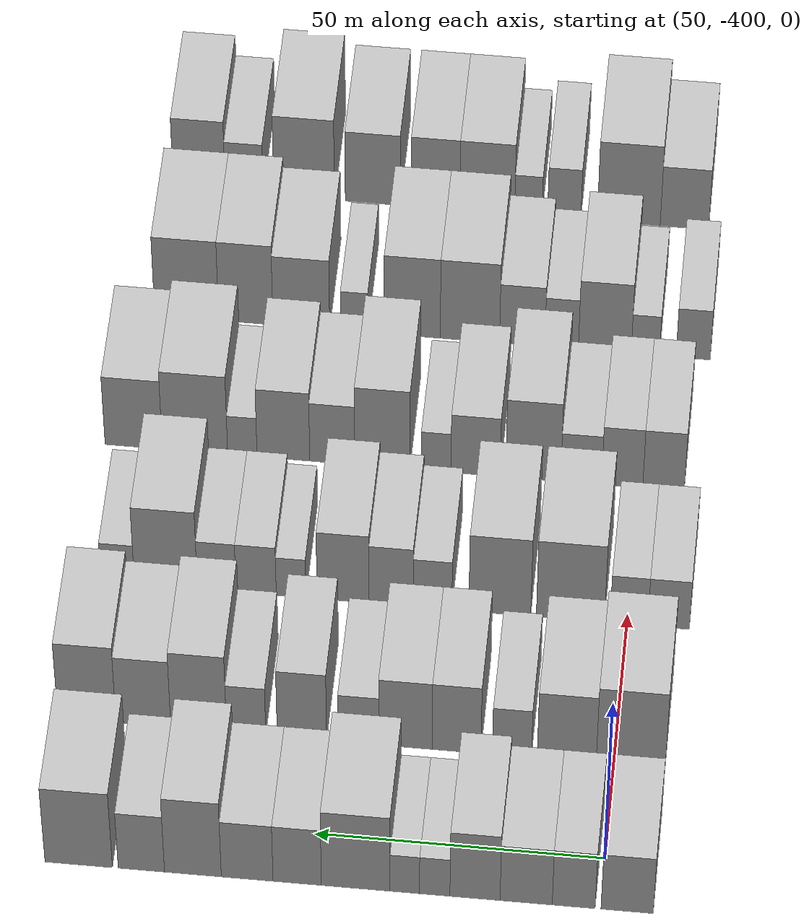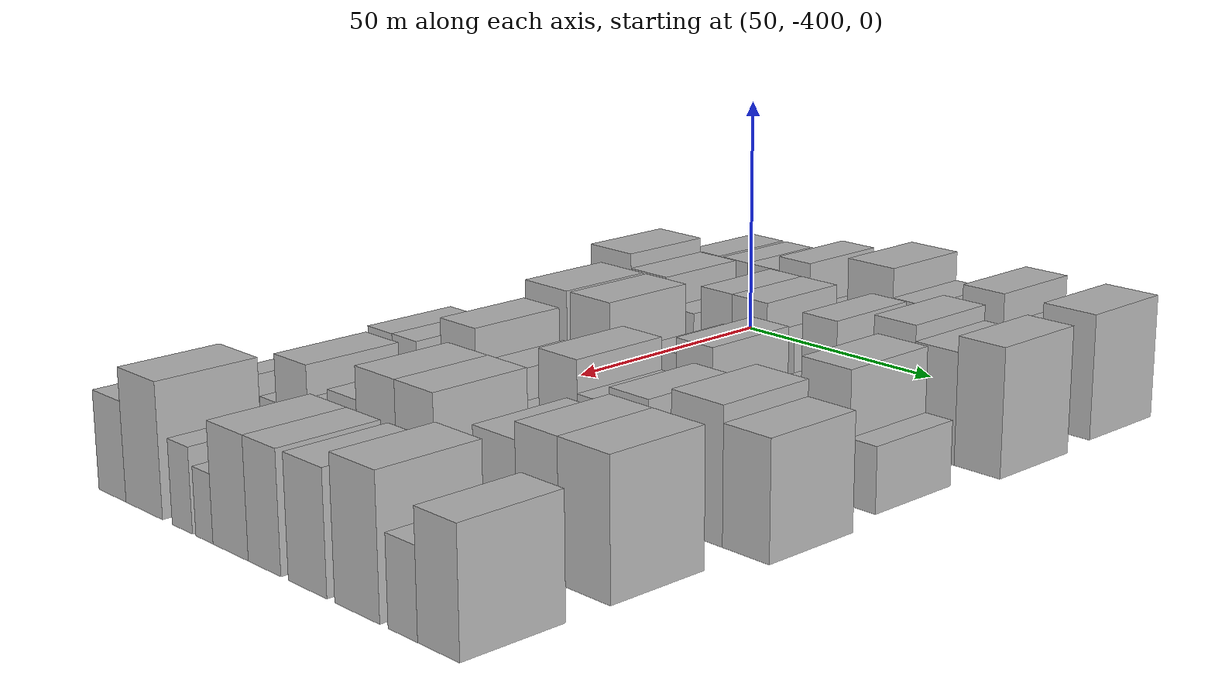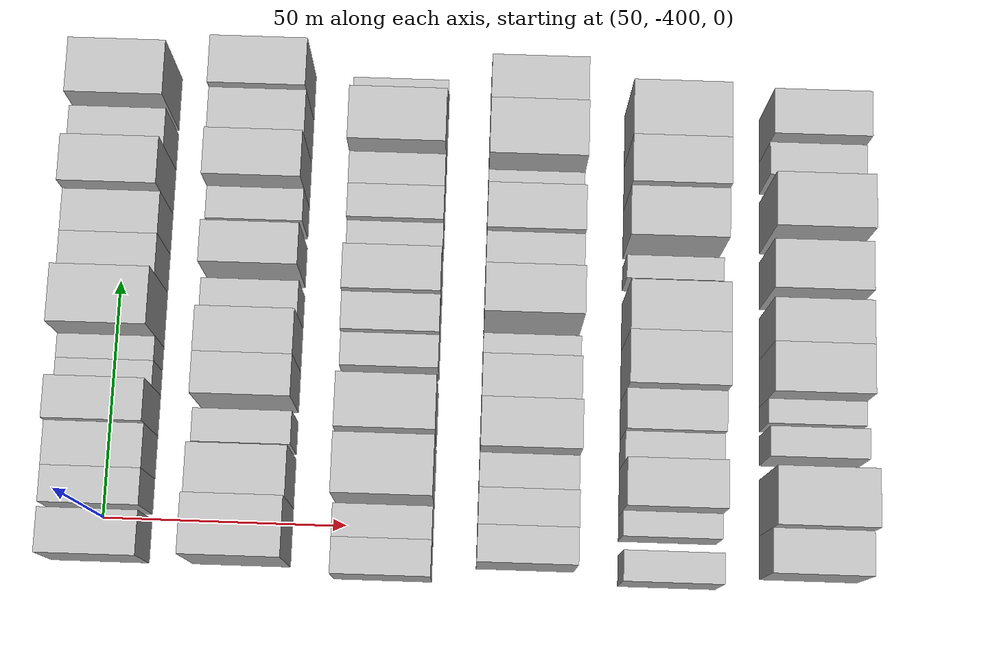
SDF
<sdf version="1.6">
 <world name="default">
  <model name="building_14">
   <static>1</static>
   <pose>50.0000 -404.5082 0 0.000000 0.000000 0.000000</pose>
   <link name="link">
    <pose>0 0 9.00 0 0 0</pose>
    <collision name="collision"><geometry><box><size>20.0000 8.9333 18.0000</size></box></geometry></collision>
    <visual name="visual">
     <cast_shadows>0</cast_shadows>
     <geometry><box><size>20.0000 8.9333 18.0000</size></box></geometry>
     <material>
      <script>
       <uri>model://HANNAS_wall/materials/scripts</uri>
       <uri>model://HANNAS_wall/materials/textures</uri>
       <name>vrc/HANNAS_wall</name>
      </script>
     </material>
    </visual>
   </link>
  </model>
  <model name="building_15">
   <static>1</static>
   <pose>50.0000 -395.3753 0 0.000000 0.000000 0.000000</pose>
   <link name="link">
    <pose>0 0 9.00 0 0 0</pose>
    <collision name="collision"><geometry><box><size>20.0000 7.3325 18.0000</size></box></geometry></collision>
    <visual name="visual">
     <cast_shadows>0</cast_shadows>
     <geometry><box><size>20.0000 7.3325 18.0000</size></box></geometry>
     <material>
      <script>
       <uri>model://HANNAS_wall/materials/scripts</uri>
       <uri>model://HANNAS_wall/materials/textures</uri>
       <name>vrc/HANNAS_wall</name>
      </script>
     </material>
    </visual>
   </link>
  </model>
  <model name="building_16">
   <static>1</static>
   <pose>50.0000 -387.2432 0 0.000000 0.000000 0.000000</pose>
   <link name="link">
    <pose>0 0 9.00 0 0 0</pose>
    <collision name="collision"><geometry><box><size>20.0000 8.9317 18.0000</size></box></geometry></collision>
    <visual name="visual">
     <cast_shadows>0</cast_shadows>
     <geometry><box><size>20.0000 8.9317 18.0000</size></box></geometry>
     <material>
      <script>
       <uri>model://HANNAS_wall/materials/scripts</uri>
       <uri>model://HANNAS_wall/materials/textures</uri>
       <name>vrc/HANNAS_wall</name>
      </script>
     </material>
    </visual>
   </link>
  </model>
  <model name="building_17">
   <static>1</static>
   <pose>50.0000 -378.4819 0 0.000000 0.000000 0.000000</pose>
   <link name="link">
    <pose>0 0 10.50 0 0 0</pose>
    <collision name="collision"><geometry><box><size>20.0000 8.5909 21.0000</size></box></geometry></collision>
    <visual name="visual">
     <cast_shadows>0</cast_shadows>
     <geometry><box><size>20.0000 8.5909 21.0000</size></box></geometry>
     <material>
      <script>
       <uri>model://HANNAS_wall/materials/scripts</uri>
       <uri>model://HANNAS_wall/materials/textures</uri>
       <name>vrc/HANNAS_wall</name>
      </script>
     </material>
    </visual>
   </link>
  </model>
  <model name="building_18">
   <static>1</static>
   <pose>50.0000 -371.5824 0 0.000000 0.000000 0.000000</pose>
   <link name="link">
    <pose>0 0 6.00 0 0 0</pose>
    <collision name="collision"><geometry><box><size>20.0000 5.2082 12.0000</size></box></geometry></collision>
    <visual name="visual">
     <cast_shadows>0</cast_shadows>
     <geometry><box><size>20.0000 5.2082 12.0000</size></box></geometry>
     <material>
      <script>
       <uri>model://HANNAS_wall/materials/scripts</uri>
       <uri>model://HANNAS_wall/materials/textures</uri>
       <name>vrc/HANNAS_wall</name>
      </script>
     </material>
    </visual>
   </link>
  </model>
  <model name="building_19">
   <static>1</static>
   <pose>50.0000 -366.4472 0 0.000000 0.000000 0.000000</pose>
   <link name="link">
    <pose>0 0 6.00 0 0 0</pose>
    <collision name="collision"><geometry><box><size>20.0000 5.0620 12.0000</size></box></geometry></collision>
    <visual name="visual">
     <cast_shadows>0</cast_shadows>
     <geometry><box><size>20.0000 5.0620 12.0000</size></box></geometry>
     <material>
      <script>
       <uri>model://HANNAS_wall/materials/scripts</uri>
       <uri>model://HANNAS_wall/materials/textures</uri>
       <name>vrc/HANNAS_wall</name>
      </script>
     </material>
    </visual>
   </link>
  </model>
  <model name="building_20">
   <static>1</static>
   <pose>50.0000 -358.0317 0 0.000000 0.000000 0.000000</pose>
   <link name="link">
    <pose>0 0 12.00 0 0 0</pose>
    <collision name="collision"><geometry><box><size>20.0000 11.7691 24.0000</size></box></geometry></collision>
    <visual name="visual">
     <cast_shadows>0</cast_shadows>
     <geometry><box><size>20.0000 11.7691 24.0000</size></box></geometry>
     <material>
      <script>
       <uri>model://HANNAS_wall/materials/scripts</uri>
       <uri>model://HANNAS_wall/materials/textures</uri>
       <name>vrc/HANNAS_wall</name>
      </script>
     </material>
    </visual>
   </link>
  </model>
  <model name="building_21">
   <static>1</static>
   <pose>50.0000 -347.9946 0 0.000000 0.000000 0.000000</pose>
   <link name="link">
    <pose>0 0 9.00 0 0 0</pose>
    <collision name="collision"><geometry><box><size>20.0000 8.3049 18.0000</size></box></geometry></collision>
    <visual name="visual">
     <cast_shadows>0</cast_shadows>
     <geometry><box><size>20.0000 8.3049 18.0000</size></box></geometry>
     <material>
      <script>
       <uri>model://HANNAS_wall/materials/scripts</uri>
       <uri>model://HANNAS_wall/materials/textures</uri>
       <name>vrc/HANNAS_wall</name>
      </script>
     </material>
    </visual>
   </link>
  </model>
  <model name="building_22">
   <static>1</static>
   <pose>50.0000 -339.3955 0 0.000000 0.000000 0.000000</pose>
   <link name="link">
    <pose>0 0 9.00 0 0 0</pose>
    <collision name="collision"><geometry><box><size>20.0000 8.8934 18.0000</size></box></geometry></collision>
    <visual name="visual">
     <cast_shadows>0</cast_shadows>
     <geometry><box><size>20.0000 8.8934 18.0000</size></box></geometry>
     <material>
      <script>
       <uri>model://HANNAS_wall/materials/scripts</uri>
       <uri>model://HANNAS_wall/materials/textures</uri>
       <name>vrc/HANNAS_wall</name>
      </script>
     </material>
    </visual>
   </link>
  </model>
  <model name="building_23">
   <static>1</static>
   <pose>50.0000 -330.0623 0 0.000000 0.000000 0.000000</pose>
   <link name="link">
    <pose>0 0 12.00 0 0 0</pose>
    <collision name="collision"><geometry><box><size>20.0000 9.7729 24.0000</size></box></geometry></collision>
    <visual name="visual">
     <cast_shadows>0</cast_shadows>
     <geometry><box><size>20.0000 9.7729 24.0000</size></box></geometry>
     <material>
      <script>
       <uri>model://HANNAS_wall/materials/scripts</uri>
       <uri>model://HANNAS_wall/materials/textures</uri>
       <name>vrc/HANNAS_wall</name>
      </script>
     </material>
    </visual>
   </link>
  </model>
  <model name="building_24">
   <static>1</static>
   <pose>50.0000 -321.1893 0 0.000000 0.000000 0.000000</pose>
   <link name="link">
    <pose>0 0 9.00 0 0 0</pose>
    <collision name="collision"><geometry><box><size>20.0000 7.9732 18.0000</size></box></geometry></collision>
    <visual name="visual">
     <cast_shadows>0</cast_shadows>
     <geometry><box><size>20.0000 7.9732 18.0000</size></box></geometry>
     <material>
      <script>
       <uri>model://HANNAS_wall/materials/scripts</uri>
       <uri>model://HANNAS_wall/materials/textures</uri>
       <name>vrc/HANNAS_wall</name>
      </script>
     </material>
    </visual>
   </link>
  </model>
  <model name="building_25">
   <static>1</static>
   <pose>50.0000 -310.3967 0 0.000000 0.000000 0.000000</pose>
   <link name="link">
    <pose>0 0 12.00 0 0 0</pose>
    <collision name="collision"><geometry><box><size>20.0000 11.6121 24.0000</size></box></geometry></collision>
    <visual name="visual">
     <cast_shadows>0</cast_shadows>
     <geometry><box><size>20.0000 11.6121 24.0000</size></box></geometry>
     <material>
      <script>
       <uri>model://HANNAS_wall/materials/scripts</uri>
       <uri>model://HANNAS_wall/materials/textures</uri>
       <name>vrc/HANNAS_wall</name>
      </script>
     </material>
    </visual>
   </link>
  </model>
  <model name="building_134">
   <static>1</static>
   <pose>79.0000 -402.8582 0 0.000000 0.000000 0.000000</pose>
   <link name="link">
    <pose>0 0 12.00 0 0 0</pose>
    <collision name="collision"><geometry><box><size>20.0000 11.9612 24.0000</size></box></geometry></collision>
    <visual name="visual">
     <cast_shadows>0</cast_shadows>
     <geometry><box><size>20.0000 11.9612 24.0000</size></box></geometry>
     <material>
      <script>
       <uri>model://HANNAS_wall/materials/scripts</uri>
       <uri>model://HANNAS_wall/materials/textures</uri>
       <name>vrc/HANNAS_wall</name>
      </script>
     </material>
    </visual>
   </link>
  </model>
  <model name="building_135">
   <static>1</static>
   <pose>79.0000 -391.7599 0 0.000000 0.000000 0.000000</pose>
   <link name="link">
    <pose>0 0 10.50 0 0 0</pose>
    <collision name="collision"><geometry><box><size>20.0000 10.2354 21.0000</size></box></geometry></collision>
    <visual name="visual">
     <cast_shadows>0</cast_shadows>
     <geometry><box><size>20.0000 10.2354 21.0000</size></box></geometry>
     <material>
      <script>
       <uri>model://HANNAS_wall/materials/scripts</uri>
       <uri>model://HANNAS_wall/materials/textures</uri>
       <name>vrc/HANNAS_wall</name>
      </script>
     </material>
    </visual>
   </link>
  </model>
  <model name="building_136">
   <static>1</static>
   <pose>79.0000 -382.2510 0 0.000000 0.000000 0.000000</pose>
   <link name="link">
    <pose>0 0 7.50 0 0 0</pose>
    <collision name="collision"><geometry><box><size>20.0000 6.7823 15.0000</size></box></geometry></collision>
    <visual name="visual">
     <cast_shadows>0</cast_shadows>
     <geometry><box><size>20.0000 6.7823 15.0000</size></box></geometry>
     <material>
      <script>
       <uri>model://HANNAS_wall/materials/scripts</uri>
       <uri>model://HANNAS_wall/materials/textures</uri>
       <name>vrc/HANNAS_wall</name>
      </script>
     </material>
    </visual>
   </link>
  </model>
  <model name="building_137">
   <static>1</static>
   <pose>79.0000 -372.6180 0 0.000000 0.000000 0.000000</pose>
   <link name="link">
    <pose>0 0 10.50 0 0 0</pose>
    <collision name="collision"><geometry><box><size>20.0000 8.4836 21.0000</size></box></geometry></collision>
    <visual name="visual">
     <cast_shadows>0</cast_shadows>
     <geometry><box><size>20.0000 8.4836 21.0000</size></box></geometry>
     <material>
      <script>
       <uri>model://HANNAS_wall/materials/scripts</uri>
       <uri>model://HANNAS_wall/materials/textures</uri>
       <name>vrc/HANNAS_wall</name>
      </script>
     </material>
    </visual>
   </link>
  </model>
  <model name="building_138">
   <static>1</static>
   <pose>79.0000 -363.7415 0 0.000000 0.000000 0.000000</pose>
   <link name="link">
    <pose>0 0 10.50 0 0 0</pose>
    <collision name="collision"><geometry><box><size>20.0000 9.2694 21.0000</size></box></geometry></collision>
    <visual name="visual">
     <cast_shadows>0</cast_shadows>
     <geometry><box><size>20.0000 9.2694 21.0000</size></box></geometry>
     <material>
      <script>
       <uri>model://HANNAS_wall/materials/scripts</uri>
       <uri>model://HANNAS_wall/materials/textures</uri>
       <name>vrc/HANNAS_wall</name>
      </script>
     </material>
    </visual>
   </link>
  </model>
  <model name="building_139">
   <static>1</static>
   <pose>79.0000 -355.5695 0 0.000000 0.000000 0.000000</pose>
   <link name="link">
    <pose>0 0 7.50 0 0 0</pose>
    <collision name="collision"><geometry><box><size>20.0000 7.0746 15.0000</size></box></geometry></collision>
    <visual name="visual">
     <cast_shadows>0</cast_shadows>
     <geometry><box><size>20.0000 7.0746 15.0000</size></box></geometry>
     <material>
      <script>
       <uri>model://HANNAS_wall/materials/scripts</uri>
       <uri>model://HANNAS_wall/materials/textures</uri>
       <name>vrc/HANNAS_wall</name>
      </script>
     </material>
    </visual>
   </link>
  </model>
  <model name="building_140">
   <static>1</static>
   <pose>79.0000 -345.7314 0 0.000000 0.000000 0.000000</pose>
   <link name="link">
    <pose>0 0 10.50 0 0 0</pose>
    <collision name="collision"><geometry><box><size>20.0000 8.6015 21.0000</size></box></geometry></collision>
    <visual name="visual">
     <cast_shadows>0</cast_shadows>
     <geometry><box><size>20.0000 8.6015 21.0000</size></box></geometry>
     <material>
      <script>
       <uri>model://HANNAS_wall/materials/scripts</uri>
       <uri>model://HANNAS_wall/materials/textures</uri>
       <name>vrc/HANNAS_wall</name>
      </script>
     </material>
    </visual>
   </link>
  </model>
  <model name="building_141">
   <static>1</static>
   <pose>79.0000 -336.0127 0 0.000000 0.000000 0.000000</pose>
   <link name="link">
    <pose>0 0 7.50 0 0 0</pose>
    <collision name="collision"><geometry><box><size>20.0000 6.8360 15.0000</size></box></geometry></collision>
    <visual name="visual">
     <cast_shadows>0</cast_shadows>
     <geometry><box><size>20.0000 6.8360 15.0000</size></box></geometry>
     <material>
      <script>
       <uri>model://HANNAS_wall/materials/scripts</uri>
       <uri>model://HANNAS_wall/materials/textures</uri>
       <name>vrc/HANNAS_wall</name>
      </script>
     </material>
    </visual>
   </link>
  </model>
  <model name="building_142">
   <static>1</static>
   <pose>79.0000 -327.7256 0 0.000000 0.000000 0.000000</pose>
   <link name="link">
    <pose>0 0 12.00 0 0 0</pose>
    <collision name="collision"><geometry><box><size>20.0000 9.7382 24.0000</size></box></geometry></collision>
    <visual name="visual">
     <cast_shadows>0</cast_shadows>
     <geometry><box><size>20.0000 9.7382 24.0000</size></box></geometry>
     <material>
      <script>
       <uri>model://HANNAS_wall/materials/scripts</uri>
       <uri>model://HANNAS_wall/materials/textures</uri>
       <name>vrc/HANNAS_wall</name>
      </script>
     </material>
    </visual>
   </link>
  </model>
  <model name="building_143">
   <static>1</static>
   <pose>79.0000 -318.0687 0 0.000000 0.000000 0.000000</pose>
   <link name="link">
    <pose>0 0 10.50 0 0 0</pose>
    <collision name="collision"><geometry><box><size>20.0000 9.5757 21.0000</size></box></geometry></collision>
    <visual name="visual">
     <cast_shadows>0</cast_shadows>
     <geometry><box><size>20.0000 9.5757 21.0000</size></box></geometry>
     <material>
      <script>
       <uri>model://HANNAS_wall/materials/scripts</uri>
       <uri>model://HANNAS_wall/materials/textures</uri>
       <name>vrc/HANNAS_wall</name>
      </script>
     </material>
    </visual>
   </link>
  </model>
  <model name="building_144">
   <static>1</static>
   <pose>79.0000 -308.2097 0 0.000000 0.000000 0.000000</pose>
   <link name="link">
    <pose>0 0 12.00 0 0 0</pose>
    <collision name="collision"><geometry><box><size>20.0000 10.1423 24.0000</size></box></geometry></collision>
    <visual name="visual">
     <cast_shadows>0</cast_shadows>
     <geometry><box><size>20.0000 10.1423 24.0000</size></box></geometry>
     <material>
      <script>
       <uri>model://HANNAS_wall/materials/scripts</uri>
       <uri>model://HANNAS_wall/materials/textures</uri>
       <name>vrc/HANNAS_wall</name>
      </script>
     </material>
    </visual>
   </link>
  </model>
  <model name="building_246">
   <static>1</static>
   <pose>108.0000 -407.2840 0 0.000000 0.000000 0.000000</pose>
   <link name="link">
    <pose>0 0 7.50 0 0 0</pose>
    <collision name="collision"><geometry><box><size>20.0000 7.2941 15.0000</size></box></geometry></collision>
    <visual name="visual">
     <cast_shadows>0</cast_shadows>
     <geometry><box><size>20.0000 7.2941 15.0000</size></box></geometry>
     <material>
      <script>
       <uri>model://HANNAS_wall/materials/scripts</uri>
       <uri>model://HANNAS_wall/materials/textures</uri>
       <name>vrc/HANNAS_wall</name>
      </script>
     </material>
    </visual>
   </link>
  </model>
  <model name="building_247">
   <static>1</static>
   <pose>108.0000 -400.3169 0 0.000000 0.000000 0.000000</pose>
   <link name="link">
    <pose>0 0 7.50 0 0 0</pose>
    <collision name="collision"><geometry><box><size>20.0000 6.6402 15.0000</size></box></geometry></collision>
    <visual name="visual">
     <cast_shadows>0</cast_shadows>
     <geometry><box><size>20.0000 6.6402 15.0000</size></box></geometry>
     <material>
      <script>
       <uri>model://HANNAS_wall/materials/scripts</uri>
       <uri>model://HANNAS_wall/materials/textures</uri>
       <name>vrc/HANNAS_wall</name>
      </script>
     </material>
    </visual>
   </link>
  </model>
  <model name="building_248">
   <static>1</static>
   <pose>108.0000 -390.0061 0 0.000000 0.000000 0.000000</pose>
   <link name="link">
    <pose>0 0 12.00 0 0 0</pose>
    <collision name="collision"><geometry><box><size>20.0000 11.9814 24.0000</size></box></geometry></collision>
    <visual name="visual">
     <cast_shadows>0</cast_shadows>
     <geometry><box><size>20.0000 11.9814 24.0000</size></box></geometry>
     <material>
      <script>
       <uri>model://HANNAS_wall/materials/scripts</uri>
       <uri>model://HANNAS_wall/materials/textures</uri>
       <name>vrc/HANNAS_wall</name>
      </script>
     </material>
    </visual>
   </link>
  </model>
  <model name="building_249">
   <static>1</static>
   <pose>108.0000 -377.5690 0 0.000000 0.000000 0.000000</pose>
   <link name="link">
    <pose>0 0 12.00 0 0 0</pose>
    <collision name="collision"><geometry><box><size>20.0000 10.8928 24.0000</size></box></geometry></collision>
    <visual name="visual">
     <cast_shadows>0</cast_shadows>
     <geometry><box><size>20.0000 10.8928 24.0000</size></box></geometry>
     <material>
      <script>
       <uri>model://HANNAS_wall/materials/scripts</uri>
       <uri>model://HANNAS_wall/materials/textures</uri>
       <name>vrc/HANNAS_wall</name>
      </script>
     </material>
    </visual>
   </link>
  </model>
  <model name="building_250">
   <static>1</static>
   <pose>108.0000 -365.7047 0 0.000000 0.000000 0.000000</pose>
   <link name="link">
    <pose>0 0 7.50 0 0 0</pose>
    <collision name="collision"><geometry><box><size>20.0000 6.8358 15.0000</size></box></geometry></collision>
    <visual name="visual">
     <cast_shadows>0</cast_shadows>
     <geometry><box><size>20.0000 6.8358 15.0000</size></box></geometry>
     <material>
      <script>
       <uri>model://HANNAS_wall/materials/scripts</uri>
       <uri>model://HANNAS_wall/materials/textures</uri>
       <name>vrc/HANNAS_wall</name>
      </script>
     </material>
    </visual>
   </link>
  </model>
  <model name="building_251">
   <static>1</static>
   <pose>108.0000 -358.4031 0 0.000000 0.000000 0.000000</pose>
   <link name="link">
    <pose>0 0 9.00 0 0 0</pose>
    <collision name="collision"><geometry><box><size>20.0000 7.7673 18.0000</size></box></geometry></collision>
    <visual name="visual">
     <cast_shadows>0</cast_shadows>
     <geometry><box><size>20.0000 7.7673 18.0000</size></box></geometry>
     <material>
      <script>
       <uri>model://HANNAS_wall/materials/scripts</uri>
       <uri>model://HANNAS_wall/materials/textures</uri>
       <name>vrc/HANNAS_wall</name>
      </script>
     </material>
    </visual>
   </link>
  </model>
  <model name="building_252">
   <static>1</static>
   <pose>108.0000 -349.9289 0 0.000000 0.000000 0.000000</pose>
   <link name="link">
    <pose>0 0 10.50 0 0 0</pose>
    <collision name="collision"><geometry><box><size>20.0000 9.1811 21.0000</size></box></geometry></collision>
    <visual name="visual">
     <cast_shadows>0</cast_shadows>
     <geometry><box><size>20.0000 9.1811 21.0000</size></box></geometry>
     <material>
      <script>
       <uri>model://HANNAS_wall/materials/scripts</uri>
       <uri>model://HANNAS_wall/materials/textures</uri>
       <name>vrc/HANNAS_wall</name>
      </script>
     </material>
    </visual>
   </link>
  </model>
  <model name="building_253">
   <static>1</static>
   <pose>108.0000 -340.7254 0 0.000000 0.000000 0.000000</pose>
   <link name="link">
    <pose>0 0 6.00 0 0 0</pose>
    <collision name="collision"><geometry><box><size>20.0000 5.2258 12.0000</size></box></geometry></collision>
    <visual name="visual">
     <cast_shadows>0</cast_shadows>
     <geometry><box><size>20.0000 5.2258 12.0000</size></box></geometry>
     <material>
      <script>
       <uri>model://HANNAS_wall/materials/scripts</uri>
       <uri>model://HANNAS_wall/materials/textures</uri>
       <name>vrc/HANNAS_wall</name>
      </script>
     </material>
    </visual>
   </link>
  </model>
  <model name="building_254">
   <static>1</static>
   <pose>108.0000 -334.5528 0 0.000000 0.000000 0.000000</pose>
   <link name="link">
    <pose>0 0 7.50 0 0 0</pose>
    <collision name="collision"><geometry><box><size>20.0000 7.1193 15.0000</size></box></geometry></collision>
    <visual name="visual">
     <cast_shadows>0</cast_shadows>
     <geometry><box><size>20.0000 7.1193 15.0000</size></box></geometry>
     <material>
      <script>
       <uri>model://HANNAS_wall/materials/scripts</uri>
       <uri>model://HANNAS_wall/materials/textures</uri>
       <name>vrc/HANNAS_wall</name>
      </script>
     </material>
    </visual>
   </link>
  </model>
  <model name="building_255">
   <static>1</static>
   <pose>108.0000 -327.5733 0 0.000000 0.000000 0.000000</pose>
   <link name="link">
    <pose>0 0 7.50 0 0 0</pose>
    <collision name="collision"><geometry><box><size>20.0000 6.8397 15.0000</size></box></geometry></collision>
    <visual name="visual">
     <cast_shadows>0</cast_shadows>
     <geometry><box><size>20.0000 6.8397 15.0000</size></box></geometry>
     <material>
      <script>
       <uri>model://HANNAS_wall/materials/scripts</uri>
       <uri>model://HANNAS_wall/materials/textures</uri>
       <name>vrc/HANNAS_wall</name>
      </script>
     </material>
    </visual>
   </link>
  </model>
  <model name="building_256">
   <static>1</static>
   <pose>108.0000 -318.5736 0 0.000000 0.000000 0.000000</pose>
   <link name="link">
    <pose>0 0 12.00 0 0 0</pose>
    <collision name="collision"><geometry><box><size>20.0000 11.1596 24.0000</size></box></geometry></collision>
    <visual name="visual">
     <cast_shadows>0</cast_shadows>
     <geometry><box><size>20.0000 11.1596 24.0000</size></box></geometry>
     <material>
      <script>
       <uri>model://HANNAS_wall/materials/scripts</uri>
       <uri>model://HANNAS_wall/materials/textures</uri>
       <name>vrc/HANNAS_wall</name>
      </script>
     </material>
    </visual>
   </link>
  </model>
  <model name="building_257">
   <static>1</static>
   <pose>108.0000 -310.0164 0 0.000000 0.000000 0.000000</pose>
   <link name="link">
    <pose>0 0 6.00 0 0 0</pose>
    <collision name="collision"><geometry><box><size>20.0000 5.9549 12.0000</size></box></geometry></collision>
    <visual name="visual">
     <cast_shadows>0</cast_shadows>
     <geometry><box><size>20.0000 5.9549 12.0000</size></box></geometry>
     <material>
      <script>
       <uri>model://HANNAS_wall/materials/scripts</uri>
       <uri>model://HANNAS_wall/materials/textures</uri>
       <name>vrc/HANNAS_wall</name>
      </script>
     </material>
    </visual>
   </link>
  </model>
  <model name="building_355">
   <static>1</static>
   <pose>137.0000 -404.2158 0 0.000000 0.000000 0.000000</pose>
   <link name="link">
    <pose>0 0 9.00 0 0 0</pose>
    <collision name="collision"><geometry><box><size>20.0000 7.4012 18.0000</size></box></geometry></collision>
    <visual name="visual">
     <cast_shadows>0</cast_shadows>
     <geometry><box><size>20.0000 7.4012 18.0000</size></box></geometry>
     <material>
      <script>
       <uri>model://HANNAS_wall/materials/scripts</uri>
       <uri>model://HANNAS_wall/materials/textures</uri>
       <name>vrc/HANNAS_wall</name>
      </script>
     </material>
    </visual>
   </link>
  </model>
  <model name="building_356">
   <static>1</static>
   <pose>137.0000 -396.8458 0 0.000000 0.000000 0.000000</pose>
   <link name="link">
    <pose>0 0 9.00 0 0 0</pose>
    <collision name="collision"><geometry><box><size>20.0000 7.3388 18.0000</size></box></geometry></collision>
    <visual name="visual">
     <cast_shadows>0</cast_shadows>
     <geometry><box><size>20.0000 7.3388 18.0000</size></box></geometry>
     <material>
      <script>
       <uri>model://HANNAS_wall/materials/scripts</uri>
       <uri>model://HANNAS_wall/materials/textures</uri>
       <name>vrc/HANNAS_wall</name>
      </script>
     </material>
    </visual>
   </link>
  </model>
  <model name="building_357">
   <static>1</static>
   <pose>137.0000 -389.5262 0 0.000000 0.000000 0.000000</pose>
   <link name="link">
    <pose>0 0 7.50 0 0 0</pose>
    <collision name="collision"><geometry><box><size>20.0000 7.3004 15.0000</size></box></geometry></collision>
    <visual name="visual">
     <cast_shadows>0</cast_shadows>
     <geometry><box><size>20.0000 7.3004 15.0000</size></box></geometry>
     <material>
      <script>
       <uri>model://HANNAS_wall/materials/scripts</uri>
       <uri>model://HANNAS_wall/materials/textures</uri>
       <name>vrc/HANNAS_wall</name>
      </script>
     </material>
    </visual>
   </link>
  </model>
  <model name="building_358">
   <static>1</static>
   <pose>137.0000 -380.9601 0 0.000000 0.000000 0.000000</pose>
   <link name="link">
    <pose>0 0 12.00 0 0 0</pose>
    <collision name="collision"><geometry><box><size>20.0000 9.8318 24.0000</size></box></geometry></collision>
    <visual name="visual">
     <cast_shadows>0</cast_shadows>
     <geometry><box><size>20.0000 9.8318 24.0000</size></box></geometry>
     <material>
      <script>
       <uri>model://HANNAS_wall/materials/scripts</uri>
       <uri>model://HANNAS_wall/materials/textures</uri>
       <name>vrc/HANNAS_wall</name>
      </script>
     </material>
    </visual>
   </link>
  </model>
  <model name="building_359">
   <static>1</static>
   <pose>137.0000 -370.6474 0 0.000000 0.000000 0.000000</pose>
   <link name="link">
    <pose>0 0 9.00 0 0 0</pose>
    <collision name="collision"><geometry><box><size>20.0000 8.7937 18.0000</size></box></geometry></collision>
    <visual name="visual">
     <cast_shadows>0</cast_shadows>
     <geometry><box><size>20.0000 8.7937 18.0000</size></box></geometry>
     <material>
      <script>
       <uri>model://HANNAS_wall/materials/scripts</uri>
       <uri>model://HANNAS_wall/materials/textures</uri>
       <name>vrc/HANNAS_wall</name>
      </script>
     </material>
    </visual>
   </link>
  </model>
  <model name="building_360">
   <static>1</static>
   <pose>137.0000 -363.5881 0 0.000000 0.000000 0.000000</pose>
   <link name="link">
    <pose>0 0 6.00 0 0 0</pose>
    <collision name="collision"><geometry><box><size>20.0000 5.3248 12.0000</size></box></geometry></collision>
    <visual name="visual">
     <cast_shadows>0</cast_shadows>
     <geometry><box><size>20.0000 5.3248 12.0000</size></box></geometry>
     <material>
      <script>
       <uri>model://HANNAS_wall/materials/scripts</uri>
       <uri>model://HANNAS_wall/materials/textures</uri>
       <name>vrc/HANNAS_wall</name>
      </script>
     </material>
    </visual>
   </link>
  </model>
  <model name="building_361">
   <static>1</static>
   <pose>137.0000 -353.9896 0 0.000000 0.000000 0.000000</pose>
   <link name="link">
    <pose>0 0 12.00 0 0 0</pose>
    <collision name="collision"><geometry><box><size>20.0000 9.8723 24.0000</size></box></geometry></collision>
    <visual name="visual">
     <cast_shadows>0</cast_shadows>
     <geometry><box><size>20.0000 9.8723 24.0000</size></box></geometry>
     <material>
      <script>
       <uri>model://HANNAS_wall/materials/scripts</uri>
       <uri>model://HANNAS_wall/materials/textures</uri>
       <name>vrc/HANNAS_wall</name>
      </script>
     </material>
    </visual>
   </link>
  </model>
  <model name="building_362">
   <static>1</static>
   <pose>137.0000 -345.0169 0 0.000000 0.000000 0.000000</pose>
   <link name="link">
    <pose>0 0 9.00 0 0 0</pose>
    <collision name="collision"><geometry><box><size>20.0000 8.0731 18.0000</size></box></geometry></collision>
    <visual name="visual">
     <cast_shadows>0</cast_shadows>
     <geometry><box><size>20.0000 8.0731 18.0000</size></box></geometry>
     <material>
      <script>
       <uri>model://HANNAS_wall/materials/scripts</uri>
       <uri>model://HANNAS_wall/materials/textures</uri>
       <name>vrc/HANNAS_wall</name>
      </script>
     </material>
    </visual>
   </link>
  </model>
  <model name="building_363">
   <static>1</static>
   <pose>137.0000 -336.2495 0 0.000000 0.000000 0.000000</pose>
   <link name="link">
    <pose>0 0 10.50 0 0 0</pose>
    <collision name="collision"><geometry><box><size>20.0000 9.4618 21.0000</size></box></geometry></collision>
    <visual name="visual">
     <cast_shadows>0</cast_shadows>
     <geometry><box><size>20.0000 9.4618 21.0000</size></box></geometry>
     <material>
      <script>
       <uri>model://HANNAS_wall/materials/scripts</uri>
       <uri>model://HANNAS_wall/materials/textures</uri>
       <name>vrc/HANNAS_wall</name>
      </script>
     </material>
    </visual>
   </link>
  </model>
  <model name="building_364">
   <static>1</static>
   <pose>137.0000 -328.8850 0 0.000000 0.000000 0.000000</pose>
   <link name="link">
    <pose>0 0 6.00 0 0 0</pose>
    <collision name="collision"><geometry><box><size>20.0000 5.2673 12.0000</size></box></geometry></collision>
    <visual name="visual">
     <cast_shadows>0</cast_shadows>
     <geometry><box><size>20.0000 5.2673 12.0000</size></box></geometry>
     <material>
      <script>
       <uri>model://HANNAS_wall/materials/scripts</uri>
       <uri>model://HANNAS_wall/materials/textures</uri>
       <name>vrc/HANNAS_wall</name>
      </script>
     </material>
    </visual>
   </link>
  </model>
  <model name="building_365">
   <static>1</static>
   <pose>137.0000 -320.3799 0 0.000000 0.000000 0.000000</pose>
   <link name="link">
    <pose>0 0 12.00 0 0 0</pose>
    <collision name="collision"><geometry><box><size>20.0000 11.7429 24.0000</size></box></geometry></collision>
    <visual name="visual">
     <cast_shadows>0</cast_shadows>
     <geometry><box><size>20.0000 11.7429 24.0000</size></box></geometry>
     <material>
      <script>
       <uri>model://HANNAS_wall/materials/scripts</uri>
       <uri>model://HANNAS_wall/materials/textures</uri>
       <name>vrc/HANNAS_wall</name>
      </script>
     </material>
    </visual>
   </link>
  </model>
  <model name="building_366">
   <static>1</static>
   <pose>137.0000 -309.3626 0 0.000000 0.000000 0.000000</pose>
   <link name="link">
    <pose>0 0 10.50 0 0 0</pose>
    <collision name="collision"><geometry><box><size>20.0000 10.2916 21.0000</size></box></geometry></collision>
    <visual name="visual">
     <cast_shadows>0</cast_shadows>
     <geometry><box><size>20.0000 10.2916 21.0000</size></box></geometry>
     <material>
      <script>
       <uri>model://HANNAS_wall/materials/scripts</uri>
       <uri>model://HANNAS_wall/materials/textures</uri>
       <name>vrc/HANNAS_wall</name>
      </script>
     </material>
    </visual>
   </link>
  </model>
  <model name="building_469">
   <static>1</static>
   <pose>166.0000 -407.4129 0 0.000000 0.000000 0.000000</pose>
   <link name="link">
    <pose>0 0 7.50 0 0 0</pose>
    <collision name="collision"><geometry><box><size>20.0000 6.1574 15.0000</size></box></geometry></collision>
    <visual name="visual">
     <cast_shadows>0</cast_shadows>
     <geometry><box><size>20.0000 6.1574 15.0000</size></box></geometry>
     <material>
      <script>
       <uri>model://HANNAS_wall/materials/scripts</uri>
       <uri>model://HANNAS_wall/materials/textures</uri>
       <name>vrc/HANNAS_wall</name>
      </script>
     </material>
    </visual>
   </link>
  </model>
  <model name="building_470">
   <static>1</static>
   <pose>166.0000 -398.7742 0 0.000000 0.000000 0.000000</pose>
   <link name="link">
    <pose>0 0 6.00 0 0 0</pose>
    <collision name="collision"><geometry><box><size>20.0000 5.1200 12.0000</size></box></geometry></collision>
    <visual name="visual">
     <cast_shadows>0</cast_shadows>
     <geometry><box><size>20.0000 5.1200 12.0000</size></box></geometry>
     <material>
      <script>
       <uri>model://HANNAS_wall/materials/scripts</uri>
       <uri>model://HANNAS_wall/materials/textures</uri>
       <name>vrc/HANNAS_wall</name>
      </script>
     </material>
    </visual>
   </link>
  </model>
  <model name="building_471">
   <static>1</static>
   <pose>166.0000 -391.4300 0 0.000000 0.000000 0.000000</pose>
   <link name="link">
    <pose>0 0 10.50 0 0 0</pose>
    <collision name="collision"><geometry><box><size>20.0000 9.5683 21.0000</size></box></geometry></collision>
    <visual name="visual">
     <cast_shadows>0</cast_shadows>
     <geometry><box><size>20.0000 9.5683 21.0000</size></box></geometry>
     <material>
      <script>
       <uri>model://HANNAS_wall/materials/scripts</uri>
       <uri>model://HANNAS_wall/materials/textures</uri>
       <name>vrc/HANNAS_wall</name>
      </script>
     </material>
    </visual>
   </link>
  </model>
  <model name="building_472">
   <static>1</static>
   <pose>166.0000 -383.6069 0 0.000000 0.000000 0.000000</pose>
   <link name="link">
    <pose>0 0 7.50 0 0 0</pose>
    <collision name="collision"><geometry><box><size>20.0000 6.0780 15.0000</size></box></geometry></collision>
    <visual name="visual">
     <cast_shadows>0</cast_shadows>
     <geometry><box><size>20.0000 6.0780 15.0000</size></box></geometry>
     <material>
      <script>
       <uri>model://HANNAS_wall/materials/scripts</uri>
       <uri>model://HANNAS_wall/materials/textures</uri>
       <name>vrc/HANNAS_wall</name>
      </script>
     </material>
    </visual>
   </link>
  </model>
  <model name="building_473">
   <static>1</static>
   <pose>166.0000 -376.4640 0 0.000000 0.000000 0.000000</pose>
   <link name="link">
    <pose>0 0 9.00 0 0 0</pose>
    <collision name="collision"><geometry><box><size>20.0000 8.2076 18.0000</size></box></geometry></collision>
    <visual name="visual">
     <cast_shadows>0</cast_shadows>
     <geometry><box><size>20.0000 8.2076 18.0000</size></box></geometry>
     <material>
      <script>
       <uri>model://HANNAS_wall/materials/scripts</uri>
       <uri>model://HANNAS_wall/materials/textures</uri>
       <name>vrc/HANNAS_wall</name>
      </script>
     </material>
    </visual>
   </link>
  </model>
  <model name="building_474">
   <static>1</static>
   <pose>166.0000 -366.9847 0 0.000000 0.000000 0.000000</pose>
   <link name="link">
    <pose>0 0 12.00 0 0 0</pose>
    <collision name="collision"><geometry><box><size>20.0000 10.7511 24.0000</size></box></geometry></collision>
    <visual name="visual">
     <cast_shadows>0</cast_shadows>
     <geometry><box><size>20.0000 10.7511 24.0000</size></box></geometry>
     <material>
      <script>
       <uri>model://HANNAS_wall/materials/scripts</uri>
       <uri>model://HANNAS_wall/materials/textures</uri>
       <name>vrc/HANNAS_wall</name>
      </script>
     </material>
    </visual>
   </link>
  </model>
  <model name="building_475">
   <static>1</static>
   <pose>166.0000 -356.5386 0 0.000000 0.000000 0.000000</pose>
   <link name="link">
    <pose>0 0 12.00 0 0 0</pose>
    <collision name="collision"><geometry><box><size>20.0000 10.1411 24.0000</size></box></geometry></collision>
    <visual name="visual">
     <cast_shadows>0</cast_shadows>
     <geometry><box><size>20.0000 10.1411 24.0000</size></box></geometry>
     <material>
      <script>
       <uri>model://HANNAS_wall/materials/scripts</uri>
       <uri>model://HANNAS_wall/materials/textures</uri>
       <name>vrc/HANNAS_wall</name>
      </script>
     </material>
    </visual>
   </link>
  </model>
  <model name="building_476">
   <static>1</static>
   <pose>166.0000 -346.0016 0 0.000000 0.000000 0.000000</pose>
   <link name="link">
    <pose>0 0 6.00 0 0 0</pose>
    <collision name="collision"><geometry><box><size>20.0000 4.9328 12.0000</size></box></geometry></collision>
    <visual name="visual">
     <cast_shadows>0</cast_shadows>
     <geometry><box><size>20.0000 4.9328 12.0000</size></box></geometry>
     <material>
      <script>
       <uri>model://HANNAS_wall/materials/scripts</uri>
       <uri>model://HANNAS_wall/materials/textures</uri>
       <name>vrc/HANNAS_wall</name>
      </script>
     </material>
    </visual>
   </link>
  </model>
  <model name="building_477">
   <static>1</static>
   <pose>166.0000 -336.3772 0 0.000000 0.000000 0.000000</pose>
   <link name="link">
    <pose>0 0 10.50 0 0 0</pose>
    <collision name="collision"><geometry><box><size>20.0000 10.3160 21.0000</size></box></geometry></collision>
    <visual name="visual">
     <cast_shadows>0</cast_shadows>
     <geometry><box><size>20.0000 10.3160 21.0000</size></box></geometry>
     <material>
      <script>
       <uri>model://HANNAS_wall/materials/scripts</uri>
       <uri>model://HANNAS_wall/materials/textures</uri>
       <name>vrc/HANNAS_wall</name>
      </script>
     </material>
    </visual>
   </link>
  </model>
  <model name="building_478">
   <static>1</static>
   <pose>166.0000 -326.2811 0 0.000000 0.000000 0.000000</pose>
   <link name="link">
    <pose>0 0 12.00 0 0 0</pose>
    <collision name="collision"><geometry><box><size>20.0000 9.8762 24.0000</size></box></geometry></collision>
    <visual name="visual">
     <cast_shadows>0</cast_shadows>
     <geometry><box><size>20.0000 9.8762 24.0000</size></box></geometry>
     <material>
      <script>
       <uri>model://HANNAS_wall/materials/scripts</uri>
       <uri>model://HANNAS_wall/materials/textures</uri>
       <name>vrc/HANNAS_wall</name>
      </script>
     </material>
    </visual>
   </link>
  </model>
  <model name="building_479">
   <static>1</static>
   <pose>166.0000 -315.5199 0 0.000000 0.000000 0.000000</pose>
   <link name="link">
    <pose>0 0 12.00 0 0 0</pose>
    <collision name="collision"><geometry><box><size>20.0000 11.6462 24.0000</size></box></geometry></collision>
    <visual name="visual">
     <cast_shadows>0</cast_shadows>
     <geometry><box><size>20.0000 11.6462 24.0000</size></box></geometry>
     <material>
      <script>
       <uri>model://HANNAS_wall/materials/scripts</uri>
       <uri>model://HANNAS_wall/materials/textures</uri>
       <name>vrc/HANNAS_wall</name>
      </script>
     </material>
    </visual>
   </link>
  </model>
  <model name="building_585">
   <static>1</static>
   <pose>195.0000 -403.7175 0 0.000000 0.000000 0.000000</pose>
   <link name="link">
    <pose>0 0 9.00 0 0 0</pose>
    <collision name="collision"><geometry><box><size>20.0000 8.8837 18.0000</size></box></geometry></collision>
    <visual name="visual">
     <cast_shadows>0</cast_shadows>
     <geometry><box><size>20.0000 8.8837 18.0000</size></box></geometry>
     <material>
      <script>
       <uri>model://HANNAS_wall/materials/scripts</uri>
       <uri>model://HANNAS_wall/materials/textures</uri>
       <name>vrc/HANNAS_wall</name>
      </script>
     </material>
    </visual>
   </link>
  </model>
  <model name="building_586">
   <static>1</static>
   <pose>195.0000 -393.5007 0 0.000000 0.000000 0.000000</pose>
   <link name="link">
    <pose>0 0 12.00 0 0 0</pose>
    <collision name="collision"><geometry><box><size>20.0000 11.5498 24.0000</size></box></geometry></collision>
    <visual name="visual">
     <cast_shadows>0</cast_shadows>
     <geometry><box><size>20.0000 11.5498 24.0000</size></box></geometry>
     <material>
      <script>
       <uri>model://HANNAS_wall/materials/scripts</uri>
       <uri>model://HANNAS_wall/materials/textures</uri>
       <name>vrc/HANNAS_wall</name>
      </script>
     </material>
    </visual>
   </link>
  </model>
  <model name="building_587">
   <static>1</static>
   <pose>195.0000 -381.6645 0 0.000000 0.000000 0.000000</pose>
   <link name="link">
    <pose>0 0 7.50 0 0 0</pose>
    <collision name="collision"><geometry><box><size>20.0000 6.1226 15.0000</size></box></geometry></collision>
    <visual name="visual">
     <cast_shadows>0</cast_shadows>
     <geometry><box><size>20.0000 6.1226 15.0000</size></box></geometry>
     <material>
      <script>
       <uri>model://HANNAS_wall/materials/scripts</uri>
       <uri>model://HANNAS_wall/materials/textures</uri>
       <name>vrc/HANNAS_wall</name>
      </script>
     </material>
    </visual>
   </link>
  </model>
  <model name="building_588">
   <static>1</static>
   <pose>195.0000 -375.0756 0 0.000000 0.000000 0.000000</pose>
   <link name="link">
    <pose>0 0 6.00 0 0 0</pose>
    <collision name="collision"><geometry><box><size>20.0000 5.0552 12.0000</size></box></geometry></collision>
    <visual name="visual">
     <cast_shadows>0</cast_shadows>
     <geometry><box><size>20.0000 5.0552 12.0000</size></box></geometry>
     <material>
      <script>
       <uri>model://HANNAS_wall/materials/scripts</uri>
       <uri>model://HANNAS_wall/materials/textures</uri>
       <name>vrc/HANNAS_wall</name>
      </script>
     </material>
    </visual>
   </link>
  </model>
  <model name="building_589">
   <static>1</static>
   <pose>195.0000 -367.5071 0 0.000000 0.000000 0.000000</pose>
   <link name="link">
    <pose>0 0 10.50 0 0 0</pose>
    <collision name="collision"><geometry><box><size>20.0000 10.0817 21.0000</size></box></geometry></collision>
    <visual name="visual">
     <cast_shadows>0</cast_shadows>
     <geometry><box><size>20.0000 10.0817 21.0000</size></box></geometry>
     <material>
      <script>
       <uri>model://HANNAS_wall/materials/scripts</uri>
       <uri>model://HANNAS_wall/materials/textures</uri>
       <name>vrc/HANNAS_wall</name>
      </script>
     </material>
    </visual>
   </link>
  </model>
  <model name="building_590">
   <static>1</static>
   <pose>195.0000 -357.9917 0 0.000000 0.000000 0.000000</pose>
   <link name="link">
    <pose>0 0 10.50 0 0 0</pose>
    <collision name="collision"><geometry><box><size>20.0000 8.9490 21.0000</size></box></geometry></collision>
    <visual name="visual">
     <cast_shadows>0</cast_shadows>
     <geometry><box><size>20.0000 8.9490 21.0000</size></box></geometry>
     <material>
      <script>
       <uri>model://HANNAS_wall/materials/scripts</uri>
       <uri>model://HANNAS_wall/materials/textures</uri>
       <name>vrc/HANNAS_wall</name>
      </script>
     </material>
    </visual>
   </link>
  </model>
  <model name="building_591">
   <static>1</static>
   <pose>195.0000 -346.4669 0 0.000000 0.000000 0.000000</pose>
   <link name="link">
    <pose>0 0 10.50 0 0 0</pose>
    <collision name="collision"><geometry><box><size>20.0000 10.1006 21.0000</size></box></geometry></collision>
    <visual name="visual">
     <cast_shadows>0</cast_shadows>
     <geometry><box><size>20.0000 10.1006 21.0000</size></box></geometry>
     <material>
      <script>
       <uri>model://HANNAS_wall/materials/scripts</uri>
       <uri>model://HANNAS_wall/materials/textures</uri>
       <name>vrc/HANNAS_wall</name>
      </script>
     </material>
    </visual>
   </link>
  </model>
  <model name="building_592">
   <static>1</static>
   <pose>195.0000 -333.8345 0 0.000000 0.000000 0.000000</pose>
   <link name="link">
    <pose>0 0 12.00 0 0 0</pose>
    <collision name="collision"><geometry><box><size>20.0000 11.1642 24.0000</size></box></geometry></collision>
    <visual name="visual">
     <cast_shadows>0</cast_shadows>
     <geometry><box><size>20.0000 11.1642 24.0000</size></box></geometry>
     <material>
      <script>
       <uri>model://HANNAS_wall/materials/scripts</uri>
       <uri>model://HANNAS_wall/materials/textures</uri>
       <name>vrc/HANNAS_wall</name>
      </script>
     </material>
    </visual>
   </link>
  </model>
  <model name="building_593">
   <static>1</static>
   <pose>195.0000 -322.7630 0 0.000000 0.000000 0.000000</pose>
   <link name="link">
    <pose>0 0 7.50 0 0 0</pose>
    <collision name="collision"><geometry><box><size>20.0000 6.9787 15.0000</size></box></geometry></collision>
    <visual name="visual">
     <cast_shadows>0</cast_shadows>
     <geometry><box><size>20.0000 6.9787 15.0000</size></box></geometry>
     <material>
      <script>
       <uri>model://HANNAS_wall/materials/scripts</uri>
       <uri>model://HANNAS_wall/materials/textures</uri>
       <name>vrc/HANNAS_wall</name>
      </script>
     </material>
    </visual>
   </link>
  </model>
  <model name="building_594">
   <static>1</static>
   <pose>195.0000 -314.4814 0 0.000000 0.000000 0.000000</pose>
   <link name="link">
    <pose>0 0 10.50 0 0 0</pose>
    <collision name="collision"><geometry><box><size>20.0000 9.5846 21.0000</size></box></geometry></collision>
    <visual name="visual">
     <cast_shadows>0</cast_shadows>
     <geometry><box><size>20.0000 9.5846 21.0000</size></box></geometry>
     <material>
      <script>
       <uri>model://HANNAS_wall/materials/scripts</uri>
       <uri>model://HANNAS_wall/materials/textures</uri>
       <name>vrc/HANNAS_wall</name>
      </script>
     </material>
    </visual>
   </link>
  </model>
 </world>
</sdf>
